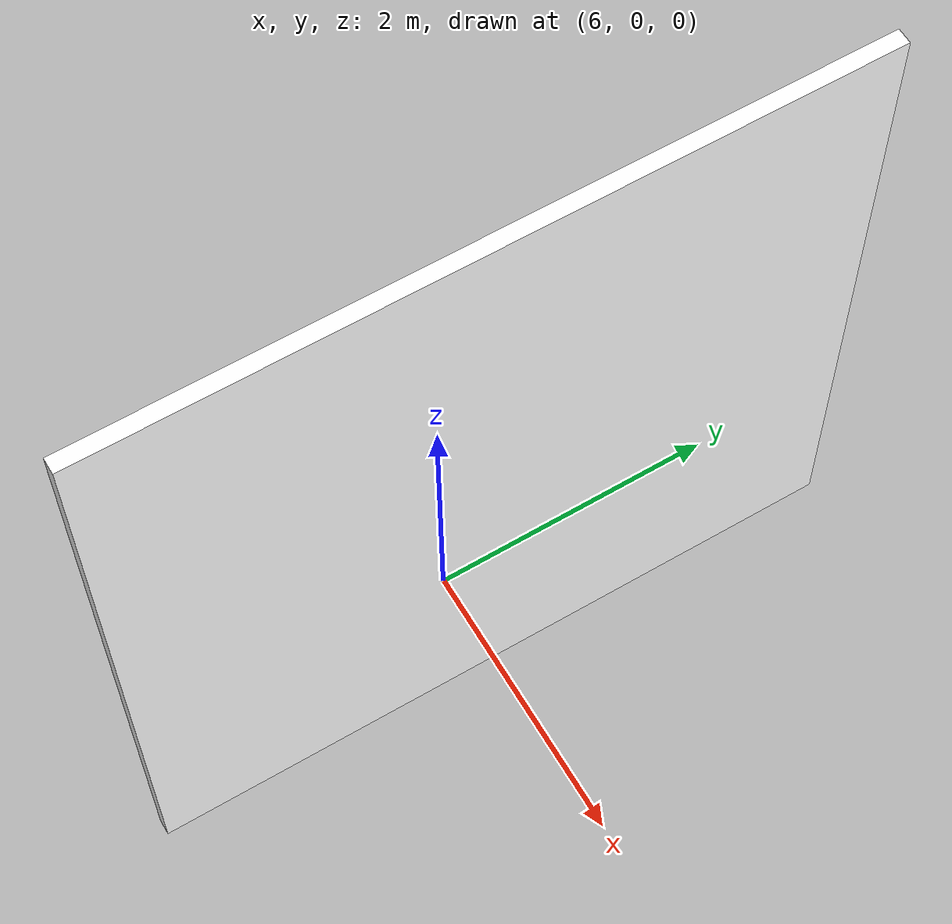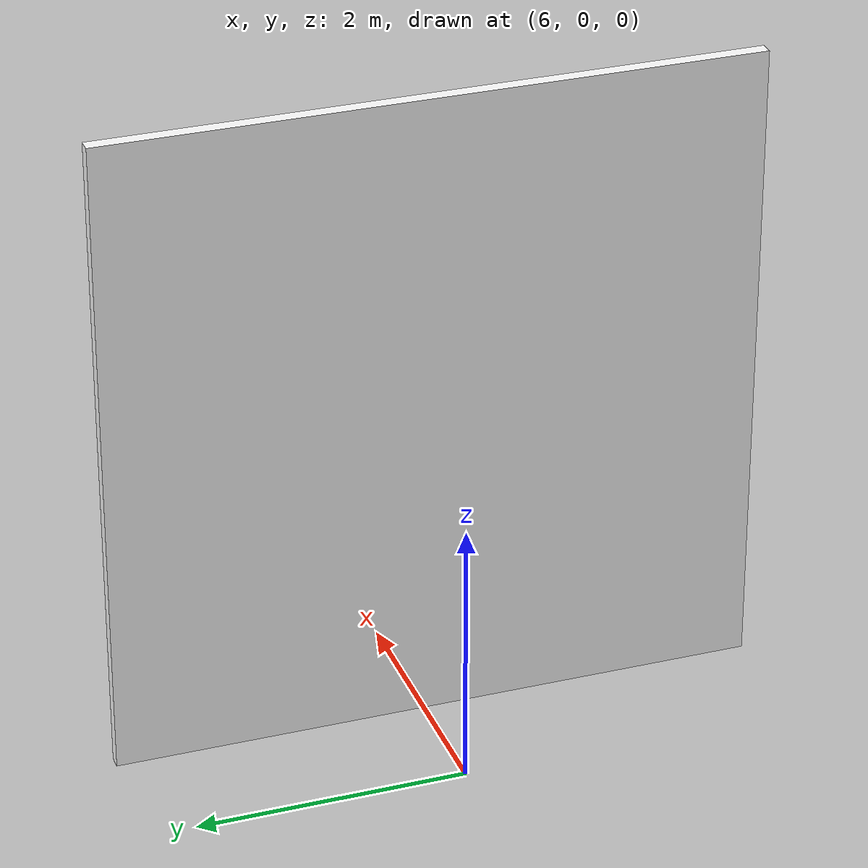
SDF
<?xml version="1.0"?>
<sdf version="1.9">
  <model name="sengon_board">
    <static>true</static>
    <link name="link">
      <pose degrees="true">6.67 0 2.61 90 0 -90</pose>
      <collision name="collision">
        <geometry><box><size>4.8 4.8 0.1</size></box></geometry>
      </collision>
      <visual name="visual">
        <geometry><box><size>4.8 4.8 0.1</size></box></geometry>
        <material>
          <ambient>1 1 1 1</ambient>
          <diffuse>1 1 1 1</diffuse>
          <specular>0 0 0 1</specular>
          <pbr>
            <metal>
              <albedo_map>model://sengon_board/materials/textures/sengon.jpg</albedo_map>
              <metalness>0.0</metalness>
              <roughness>1.0</roughness>
            </metal>
          </pbr>
        </material>
      </visual>
    </link>
  </model>
</sdf>
